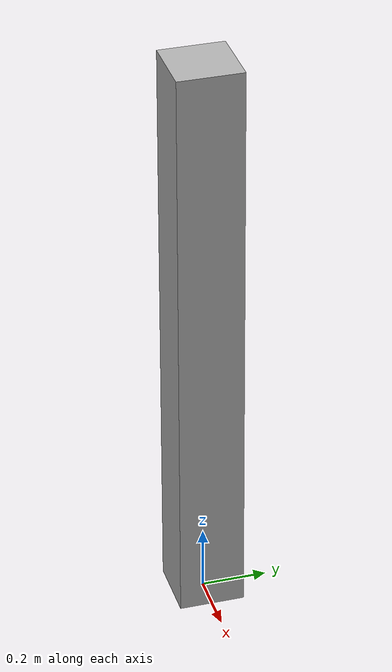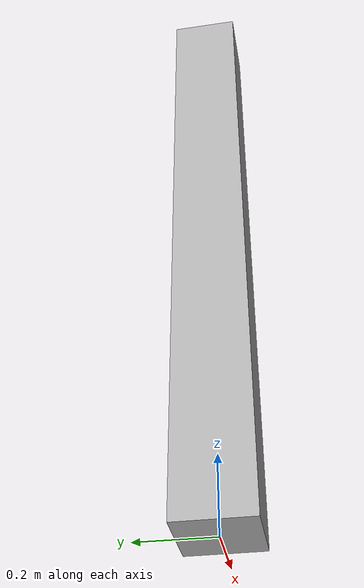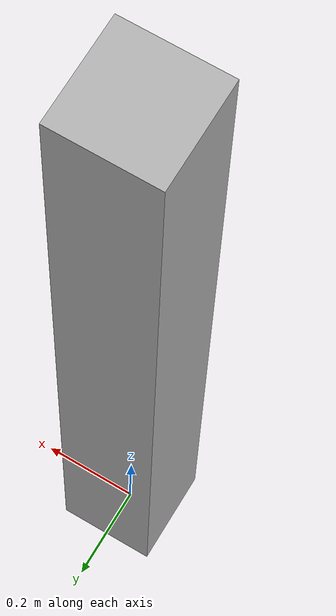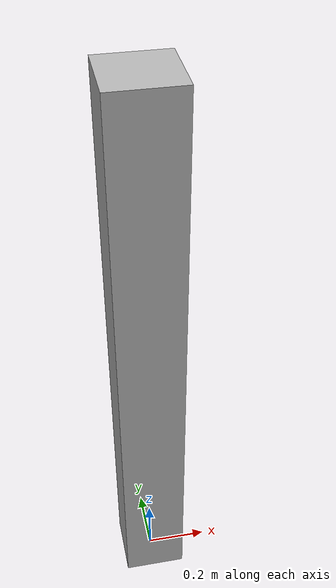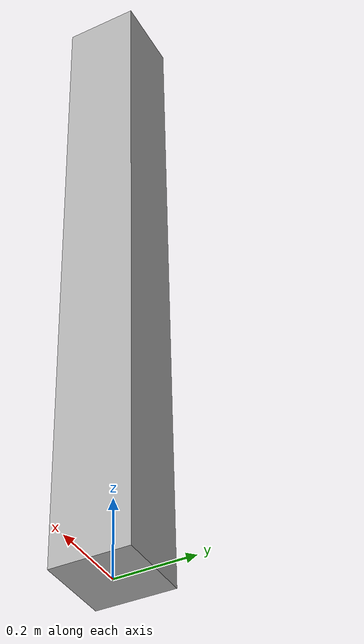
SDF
<?xml version="1.0" ?>
<sdf version="1.6">
  <model name='pisellino'>
    <static>true</static>
    <link name="link">
      <visual name="visual">
        <geometry>
          <box>
            <size>0.2 0.2 1.8</size>
          </box>
        </geometry>
        <material>
          <lighting>1</lighting>
          <shader type='pixel'>
            <normal_map>__default__</normal_map>
          </shader>
          <ambient>0.0 0.0 0.8 1</ambient>
          <diffuse>0.7 0.7 0.7 1</diffuse>
          <specular>0.01 0.01 0.01 1</specular>
          <emissive>0 0 0 1</emissive>
        </material>
        <pose>0 0 0.9 0 0 0</pose>
      </visual>
      <collision name="collision">
        <geometry>
          <box>
            <size>0.2 0.2 1.8</size>
          </box>
        </geometry>
        <pose>0 0 0.9 0 0 0</pose>
      </collision>
    </link>
  </model>
</sdf>
